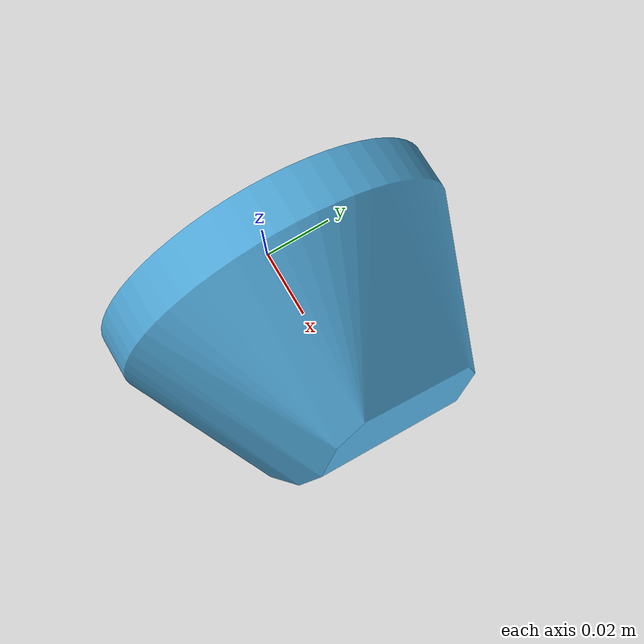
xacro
<?xml version="1.0"?>

<robot xmlns:xacro="http://ros.org/wiki/xacro" name="tool">

  <include filename="$(find xacro_properties)/properties.xacro" /> <!--contains properties such as "pi" and "deg"-->

  <link name="tool0" />

  <joint name="tool0-ee_base" type="fixed" >
    <parent link="tool0" />
    <child link="ee_base" />
    <origin xyz="0 0 0" rpy="${-180*deg} 0 ${90*deg}" />
  </joint>

  <!-- link "ee_base" and connected joints-->
  <link name="ee_base" >
    <visual>
      <geometry>
        <mesh filename="package://lesson_advanced_launch/models/puzzle_mount_sia20_visual.stl" />
      </geometry>>
    </visual>
    <collision>
      <geometry>
        <mesh filename="package://lesson_advanced_launch/models/puzzle_mount_sia20_collision.dae" />
      </geometry>
    </collision>
  </link>

  <!-- tool1 is the point that parts connect to the tool -->
  <link name="tool1" />
  <joint name="ee_base-tool1" type="fixed" >
    <parent link="ee_base" />
    <child link="tool1" />
    <origin xyz="-0.0083 0.0541 0.0143" rpy="${30*deg} ${-30*deg} 0" />
  </joint>

</robot>

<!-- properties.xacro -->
<robot>
	<property name="pi" value="3.141592654" />
	<property name="deg" value="0.017453293" /> <!--degrees to radians-->

	<include filename="$(find xacro_properties)/color_palette.xacro" />
</robot>

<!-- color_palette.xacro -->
<robot xmlns:xacro="colorpalette">
    <material name="yellow_transparent">
        <color rgba="0 1 1 0.4"/>
    </material>
    <material name="orange_transparent">
        <color rgba="1 0.5 0 0.4"/>
    </material>
    <material name="gray_transparent">
        <color rgba="0.6 0.6 0.6 0.4"/>
    </material>
    <material name="blue_transparent">
        <color rgba="0 0.8 1 0.4"/>
    </material>
    <material name="color_b">
        <color rgba="0 0.8 1 0.4"/>
    </material>
    <material name="color_a">
        <color rgba="0.8 0.2 1 0.2"/>
    </material>
    <material name="silver">
        <color rgba="0.6 0.6 0.6 1"/>
    </material>
    <material name="orange">
        <color rgba="1 0.5 0 1"/>
    </material>
    <material name="yellow">
        <color rgba="0 1 1 1"/>
    </material>
</robot>
